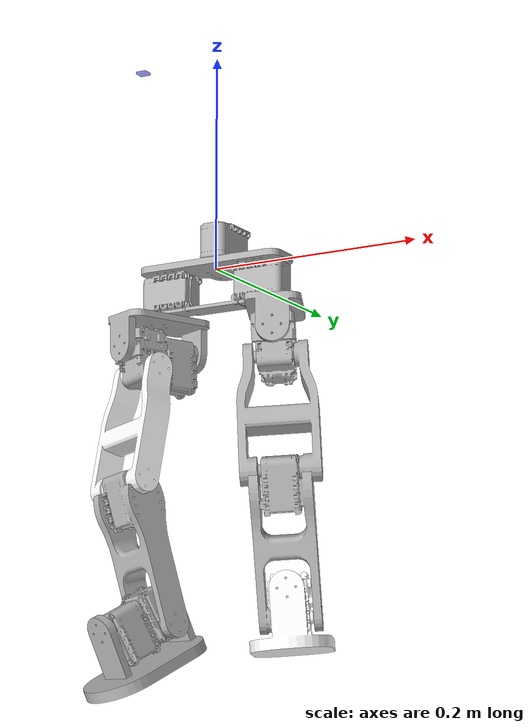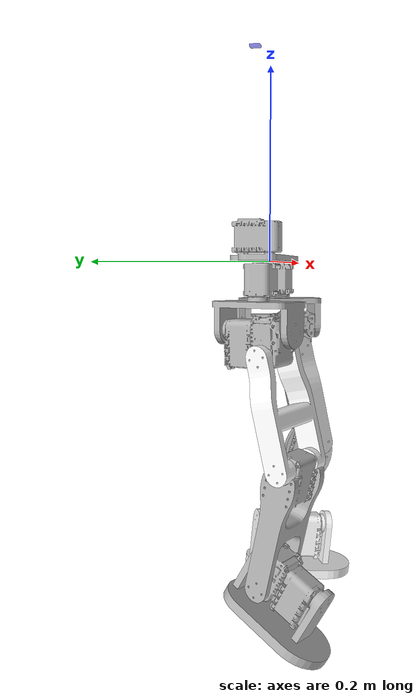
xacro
<?xml version="1.0" encoding="utf-8"?>

<robot name="humanoid" xmlns:xacro="http://www.ros.org/wiki/xacro">
    <xacro:include filename="$(find rocnikovy_projekt)/urdf/pelvis.xacro" />
    <xacro:include filename="$(find rocnikovy_projekt)/urdf/humanoid.gazebo" />
    <xacro:include filename="$(find rocnikovy_projekt)/urdf/sensors/imu_hector.xacro" />
    <xacro:include filename="$(find rocnikovy_projekt)/urdf/left_leg.xacro" />
    <xacro:include filename="$(find rocnikovy_projekt)/urdf/right_leg.xacro" />
</robot>

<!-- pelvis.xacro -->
<robot name="pelvis" xmlns:xacro="http://www.ros.org/wiki/xacro">
    <link
            name="base_link">
        <inertial>
            <origin
                    xyz="8.2334E-06 -0.0035862 -0.0041456"
                    rpy="0 0 0" />
            <mass
                    value="0.1973" />
            <inertia
                    ixx="3.8375E-05"
                    ixy="-1.8663E-09"
                    ixz="3.853E-08"
                    iyy="0.00010445"
                    iyz="2.3787E-07"
                    izz="9.554E-05" />
        </inertial>
        <visual>
            <origin
                    xyz="0 0 0"
                    rpy="0 0 0" />
            <geometry>
                <mesh
                        filename="package://rocnikovy_projekt/meshes/pelvis_link.STL" />
            </geometry>
            <material
                    name="">
                <color
                        rgba="0.69804 0.69804 0.69804 1" />
            </material>
        </visual>
        <collision>
            <origin
                    xyz="0 0 0"
                    rpy="0 0 0" />
            <geometry>
                <mesh
                        filename="package://rocnikovy_projekt/meshes/pelvis_link.STL" />
            </geometry>
        </collision>
    </link>
    <link
            name="left_hip_link">
        <inertial>
            <origin
                    xyz="4.1959E-14 -0.0015544 0.02042"
                    rpy="0 0 0" />
            <mass
                    value="0.0628" />
            <inertia
                    ixx="6.3024E-05"
                    ixy="-1.2716E-15"
                    ixz="-1.9084E-15"
                    iyy="1.705E-05"
                    iyz="-7.4568E-08"
                    izz="6.3748E-05" />
        </inertial>
        <visual>
            <origin
                    xyz="0 0 0"
                    rpy="0 0 0" />
            <geometry>
                <mesh
                        filename="package://rocnikovy_projekt/meshes/left_hip_link.STL" />
            </geometry>
            <material
                    name="">
                <color
                        rgba="0.69804 0.69804 0.69804 1" />
            </material>
        </visual>
        <collision>
            <origin
                    xyz="0 0 0"
                    rpy="0 0 0" />
            <geometry>
                <mesh
                        filename="package://rocnikovy_projekt/meshes/left_hip_link.STL" />
            </geometry>
        </collision>
    </link>
    <joint
            name="left_hip_joint"
            type="revolute">
        <origin
                xyz="0.0605 0 -0.03048"
                rpy="3.1416 0 0.44455" />
        <parent
                link="base_link" />
        <child
                link="left_hip_link" />
        <axis
                xyz="0 0 1" />
        <limit
                lower="-1"
                upper="1"
                effort="2"
                velocity="0.5" />
    </joint>

    <transmission name="trans_left_hip">
        <type>transmission_interface/SimpleTransmission</type>
        <joint name="left_hip_joint">
            <hardwareInterface>EffortJointInterface</hardwareInterface>
        </joint>
        <actuator name="motor_left_hip">
            <hardwareInterface>EffortJointInterface</hardwareInterface>
            <mechanicalReduction>1</mechanicalReduction>
        </actuator>
    </transmission>

    <link
            name="left_hip_servo_link">
        <inertial>
            <origin
                    xyz="-0.00022073 -0.010829 -0.0019615"
                    rpy="0 0 0" />
            <mass
                    value="0.1072" />
            <inertia
                    ixx="2.6938E-05"
                    ixy="2.2503E-07"
                    ixz="3.7327E-09"
                    iyy="1.623E-05"
                    iyz="2.2528E-07"
                    izz="2.751E-05" />
        </inertial>
        <visual>
            <origin
                    xyz="0 0 0"
                    rpy="0 0 0" />
            <geometry>
                <mesh
                        filename="package://rocnikovy_projekt/meshes/left_hip_servo_link.STL" />
            </geometry>
            <material
                    name="">
                <color
                        rgba="0.69804 0.69804 0.69804 1" />
            </material>
        </visual>
        <collision>
            <origin
                    xyz="0 0 0"
                    rpy="0 0 0" />
            <geometry>
                <mesh
                        filename="package://rocnikovy_projekt/meshes/left_hip_servo_link.STL" />
            </geometry>
        </collision>
    </link>
    <joint
            name="left_hip_servo_joint"
            type="revolute">
        <origin
                xyz="0 0 0.03902"
                rpy="-1.5708 -0.053854 -3.1416" />
        <parent
                link="left_hip_link" />
        <child
                link="left_hip_servo_link" />
        <axis
                xyz="0 0 1" />
        <limit
                lower="-1"
                upper="1"
                effort="2"
                velocity="0.5" />
    </joint>

    <transmission name="trans_left_hip_servo">
        <type>transmission_interface/SimpleTransmission</type>
        <joint name="left_hip_servo_joint">
            <hardwareInterface>EffortJointInterface</hardwareInterface>
        </joint>
        <actuator name="motor_left_hip_servo">
            <hardwareInterface>EffortJointInterface</hardwareInterface>
            <mechanicalReduction>1</mechanicalReduction>
        </actuator>
    </transmission>

    <link
            name="right_hip_link">
        <inertial>
            <origin
                    xyz="4.05750502641133E-11 0.00155391487199414 0.0204201314876415"
                    rpy="0 0 0" />
            <mass
                    value="0.0628" />
            <inertia
                    ixx="6.30242552027685E-05"
                    ixy="-2.22070142968391E-15"
                    ixz="-2.19765597267739E-15"
                    iyy="1.7050000604469E-05"
                    iyz="7.4543752491888E-08"
                    izz="6.37480504244599E-05" />
        </inertial>
        <visual>
            <origin
                    xyz="0 0 0"
                    rpy="0 0 0" />
            <geometry>
                <mesh
                        filename="package://rocnikovy_projekt/meshes/right_hip_link.STL" />
            </geometry>
            <material
                    name="">
                <color
                        rgba="0.698039215686274 0.698039215686274 0.698039215686274 1" />
            </material>
        </visual>
        <collision>
            <origin
                    xyz="0 0 0"
                    rpy="0 0 0" />
            <geometry>
                <mesh
                        filename="package://rocnikovy_projekt/meshes/right_hip_link.STL" />
            </geometry>
        </collision>
    </link>
    <joint
            name="right_hip_joint"
            type="revolute">
        <origin
                xyz="-0.0605 0 -0.03048"
                rpy="-3.1416 0 2.7299" />
        <parent
                link="base_link" />
        <child
                link="right_hip_link" />
        <axis
                xyz="0 0 1" />
        <limit
                lower="-1"
                upper="1"
                effort="2"
                velocity="0.5" />
    </joint>

    <transmission name="trans_right_hip">
        <type>transmission_interface/SimpleTransmission</type>
        <joint name="right_hip_joint">
            <hardwareInterface>EffortJointInterface</hardwareInterface>
        </joint>
        <actuator name="motor_right_hip">
            <hardwareInterface>EffortJointInterface</hardwareInterface>
            <mechanicalReduction>1</mechanicalReduction>
        </actuator>
    </transmission>

    <link
            name="right_hip_servo_link">
        <inertial>
            <origin
                    xyz="0.00019044 -0.010829 -0.0019918"
                    rpy="0 0 0" />
            <mass
                    value="0.1072" />
            <inertia
                    ixx="2.6938E-05"
                    ixy="-2.5072E-07"
                    ixz="3.7327E-09"
                    iyy="1.623E-05"
                    iyz="2.5096E-07"
                    izz="2.751E-05" />
        </inertial>
        <visual>
            <origin
                    xyz="0 0 0"
                    rpy="0 0 0" />
            <geometry>
                <mesh
                        filename="package://rocnikovy_projekt/meshes/right_hip_servo_link.STL" />
            </geometry>
            <material
                    name="">
                <color
                        rgba="0.69804 0.69804 0.69804 1" />
            </material>
        </visual>
        <collision>
            <origin
                    xyz="0 0 0"
                    rpy="0 0 0" />
            <geometry>
                <mesh
                        filename="package://rocnikovy_projekt/meshes/right_hip_servo_link.STL" />
            </geometry>
        </collision>
    </link>
    <joint
            name="right_hip_servo_joint"
            type="revolute">
        <origin
                xyz="0 0 0.03902"
                rpy="-1.5708 -0.056122 0" />
        <parent
                link="right_hip_link" />
        <child
                link="right_hip_servo_link" />
        <axis
                xyz="0 0 1" />
        <limit
                lower="0"
                upper="0"
                effort="2"
                velocity="0.5" />
    </joint>

    <transmission name="trans_right_hip_servo">
        <type>transmission_interface/SimpleTransmission</type>
        <joint name="right_hip_servo_joint">
            <hardwareInterface>EffortJointInterface</hardwareInterface>
        </joint>
        <actuator name="motor_right_hip_servo">
            <hardwareInterface>EffortJointInterface</hardwareInterface>
            <mechanicalReduction>1</mechanicalReduction>
        </actuator>
    </transmission>
</robot>

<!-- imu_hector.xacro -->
<robot name="imu_sensor" xmlns:xacro="http://www.ros.org/wiki/xacro">

	<xacro:include filename="$(find rocnikovy_projekt)/urdf/sensors/components/imu_sensor_hector.urdf.xacro" />

</robot>

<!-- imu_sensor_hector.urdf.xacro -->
<robot name="imu" xmlns:xacro="http://www.ros.org/wiki/xacro">
   <xacro:include	filename="$(find rocnikovy_projekt)/urdf/sensors/components/imu_sensor_hector.gazebo.xacro"/>
   <xacro:include	filename="$(find rocnikovy_projekt)/urdf/sensors/components/imu_sensor.config.xacro"/>

   <link name="imu_link">

     <visual>
        <origin xyz="${imu_link_x} ${imu_link_y} ${imu_link_z}" rpy="${imu_link_r} ${imu_link_p} ${imu_link_y}"/>
        <geometry>
          <box size="${imu_link_length} ${imu_link_width} ${imu_link_height}"/>
        </geometry>
        <material name="blue">
          <color rgba="0 0 0.8 0.5"/>
        </material>
     </visual>

      <collision>
          <origin xyz="${imu_link_x} ${imu_link_y} ${imu_link_z}" rpy="${imu_link_r} ${imu_link_p} ${imu_link_y}"/>
          <geometry>
            <box size="${imu_link_length} ${imu_link_width} ${imu_link_height}" />
          </geometry>
      </collision>

       <inertial>
           <origin xyz="0 0 0" rpy="0 0 0"/>
           <mass value="${imu_link_mass}"/>
           <xacro:box_inertia m="${imu_link_mass}" x="${imu_link_length}" y="${imu_link_width}" z="${imu_link_height}"  />
       </inertial>
   </link>

   <joint name="joint_imu" type="fixed">
      <axis xyz="0 0.0 0.0"/>
      <origin xyz="-0.08 0 0 " rpy="0 0 0 "/>
      <parent link="base_link" />
      <child link="imu_link" />

    </joint>

   <xacro:insert_gazebo_part_hector />

</robot>

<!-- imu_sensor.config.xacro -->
<robot name="imu" xmlns:xacro="http://www.ros.org/wiki/xacro" >

<!-- Configuration of a simple IMU model with additive white noise based on Gazebo IMU generic plugin.
David Cesenek, cesendav@fel.cvut.cz,
-->
    <xacro:property name="imu_link_mass" value="0.0002"/>
    <xacro:property name="imu_link_x" value="0.0"/>
    <xacro:property name="imu_link_y" value="0.0"/>
    <xacro:property name="imu_link_z" value="0.2"/>
    <xacro:property name="imu_link_r" value="0.0"/>
    <xacro:property name="imu_link_p" value="0.0"/>
    <xacro:property name="imu_link_y" value="0.0"/>
    <xacro:property name="imu_link_length" value="0.01"/>
    <xacro:property name="imu_link_width" value="0.01"/>
    <xacro:property name="imu_link_height" value="0.002"/>

    <xacro:property name="imu_updateRate" value="100"/> <!-- update rate of checking, if there is a new imu topic-->
    <xacro:property name="imu_updateRateHZ" value="100"/>  <!-- update rate of simulated sensor, in Hz-->

    <xacro:property name="imu_gaussian_noise" value="0.00215"/>
    <xacro:property name="imu_xyzOffset" value="0 0 0"/>
    <xacro:property name="imu_rpyOffset" value="0 0 0"/>

    <xacro:macro name="box_inertia" params="m x y z">
        <inertia ixx="${m * (y * y + z * z) / 12}" ixy="0" ixz="0"
                 iyy="${m * (x * x + z * z) / 12}" iyz="0"
                 izz="${m * (x * x + z * z) / 12}"
        />
    </xacro:macro>
</robot>

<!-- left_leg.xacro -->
<robot name="left_leg" xmlns:xacro="http://www.ros.org/wiki/xacro">
    <link
            name="left_thigh_link">
        <inertial>
            <origin
                    xyz="1.69171554542658E-09 -0.0607283296426261 0.00159765609901391"
                    rpy="0 0 0" />
            <mass
                    value="0.1249" />
            <inertia
                    ixx="0.00020875632994922"
                    ixy="1.2818107857486E-12"
                    ixz="-8.38700247083159E-13"
                    iyy="8.37276019948441E-05"
                    iyz="8.31465783649004E-09"
                    izz="0.000136918942523945" />
        </inertial>
        <visual>
            <origin
                    xyz="0 0 0"
                    rpy="0 0 0" />
            <geometry>
                <mesh
                        filename="package://rocnikovy_projekt/meshes/left_thigh_link.STL" />
            </geometry>
            <material
                    name="">
                <color
                        rgba="0.698039215686274 0.698039215686274 0.698039215686274 1" />
            </material>
        </visual>
        <collision>
            <origin
                    xyz="0 0 0"
                    rpy="0 0 0" />
            <geometry>
                <mesh
                        filename="package://rocnikovy_projekt/meshes/left_thigh_link.STL" />
            </geometry>
        </collision>
    </link>
    <joint
            name="left_thigh_joint"
            type="revolute">
        <origin
                xyz="0 -0.0225 -0.01715"
                rpy="1.5708 -1.3439 -1.5708" />
        <parent
                link="left_hip_servo_link" />
        <child
                link="left_thigh_link" />
        <axis
                xyz="0 0 1" />
        <limit
                lower="-3.14"
                upper="3.14"
                effort="2"
                velocity="0.5" />
    </joint>

    <transmission name="trans_left_thigh">
        <type>transmission_interface/SimpleTransmission</type>
        <joint name="left_thigh_joint">
            <hardwareInterface>EffortJointInterface</hardwareInterface>
        </joint>
        <actuator name="motor_left_thigh">
            <hardwareInterface>EffortJointInterface</hardwareInterface>
            <mechanicalReduction>1</mechanicalReduction>
        </actuator>
    </transmission>

    <link
            name="left_shin_link">
        <inertial>
            <origin
                    xyz="-1.0078E-05 -0.051004 -0.0001917"
                    rpy="0 0 0" />
            <mass
                    value="0.1613" />
            <inertia
                    ixx="0.00018043"
                    ixy="-1.2865E-08"
                    ixz="1.8773E-09"
                    iyy="6.2108E-05"
                    iyz="2.8146E-07"
                    izz="0.00013852" />
        </inertial>
        <visual>
            <origin
                    xyz="0 0 0"
                    rpy="0 0 0" />
            <geometry>
                <mesh
                        filename="package://rocnikovy_projekt/meshes/left_shin_link.STL" />
            </geometry>
            <material
                    name="">
                <color
                        rgba="0.69804 0.69804 0.69804 1" />
            </material>
        </visual>
        <collision>
            <origin
                    xyz="0 0 0"
                    rpy="0 0 0" />
            <geometry>
                <mesh
                        filename="package://rocnikovy_projekt/meshes/left_shin_link.STL" />
            </geometry>
        </collision>
    </link>
    <joint
            name="left_shin_joint"
            type="revolute">
        <origin
                xyz="0 -0.11 0"
                rpy="0 0 0.53665" />
        <parent
                link="left_thigh_link" />
        <child
                link="left_shin_link" />
        <axis
                xyz="0 0 1" />
        <limit
                lower="-3.14"
                upper="3.14"
                effort="2"
                velocity="0.5" />
    </joint>

    <transmission name="trans_left_shin">
        <type>transmission_interface/SimpleTransmission</type>
        <joint name="left_shin_joint">
            <hardwareInterface>EffortJointInterface</hardwareInterface>
        </joint>
        <actuator name="motor_left_shin">
            <hardwareInterface>EffortJointInterface</hardwareInterface>
            <mechanicalReduction>1</mechanicalReduction>
        </actuator>
    </transmission>

    <link
            name="left_ankle_link">
        <inertial>
            <origin
                    xyz="-0.0116740866089173 0.0149960300324561 -0.000529265273914892"
                    rpy="0 0 0" />
            <mass
                    value="0.1072" />
            <inertia
                    ixx="1.6230427070624E-05"
                    ixy="-2.24782250481838E-07"
                    ixz="2.25029030623655E-07"
                    iyy="2.75097004184363E-05"
                    iyz="-3.73269013550268E-09"
                    izz="2.69381077131879E-05" />
        </inertial>
        <visual>
            <origin
                    xyz="0 0 0"
                    rpy="0 0 0" />
            <geometry>
                <mesh
                        filename="package://rocnikovy_projekt/meshes/left_ankle_link.STL" />
            </geometry>
            <material
                    name="">
                <color
                        rgba="1 1 1 1" />
            </material>
        </visual>
        <collision>
            <origin
                    xyz="0 0 0"
                    rpy="0 0 0" />
            <geometry>
                <mesh
                        filename="package://rocnikovy_projekt/meshes/left_ankle_link.STL" />
            </geometry>
        </collision>
    </link>
    <joint
            name="left_ankle_joint"
            type="revolute">
        <origin
                xyz="0 -0.13 0"
                rpy="3.1416 0 -1.8026" />
        <parent
                link="left_shin_link" />
        <child
                link="left_ankle_link" />
        <axis
                xyz="0 0 1" />
        <limit
                lower="-3.14"
                upper="3.14"
                effort="2"
                velocity="0.5" />
    </joint>

    <transmission name="trans_left_ankle">
        <type>transmission_interface/SimpleTransmission</type>
        <joint name="left_ankle_joint">
            <hardwareInterface>EffortJointInterface</hardwareInterface>
        </joint>
        <actuator name="motor_left_ankle">
            <hardwareInterface>EffortJointInterface</hardwareInterface>
            <mechanicalReduction>1</mechanicalReduction>
        </actuator>
    </transmission>

    <link
            name="left_foot_link">
        <inertial>
            <origin
                    xyz="9.91363935387568E-12 -0.039654197781679 -0.0253797103440415"
                    rpy="0 0 0" />
            <mass
                    value="0.1435" />
            <inertia
                    ixx="0.000200660993762869"
                    ixy="2.59319983834851E-16"
                    ixz="2.26686514882574E-15"
                    iyy="0.000207009674728983"
                    iyz="-8.71443997911782E-06"
                    izz="7.7405804632103E-05" />
        </inertial>
        <visual>
            <origin
                    xyz="0 0 0"
                    rpy="0 0 0" />
            <geometry>
                <mesh
                        filename="package://rocnikovy_projekt/meshes/left_foot_link.STL" />
            </geometry>
            <material
                    name="">
                <color
                        rgba="1 1 1 1" />
            </material>
        </visual>
        <collision>
            <origin
                    xyz="0 0 0"
                    rpy="0 0 0" />
            <geometry>
                <mesh
                        filename="package://rocnikovy_projekt/meshes/left_foot_link.STL" />
            </geometry>
        </collision>
    </link>
    <joint
            name="left_foot_joint"
            type="revolute">
        <origin
                xyz="-0.0225 0 -0.00075"
                rpy="1.5708 -1.5582 0" />
        <parent
                link="left_ankle_link" />
        <child
                link="left_foot_link" />
        <axis
                xyz="0 0 1" />
        <limit
                lower="-3.14"
                upper="3.14"
                effort="2"
                velocity="0.5" />
    </joint>

    <transmission name="trans_left_foot">
        <type>transmission_interface/SimpleTransmission</type>
        <joint name="left_foot_joint">
            <hardwareInterface>EffortJointInterface</hardwareInterface>
        </joint>
        <actuator name="motor_left_foot">
            <hardwareInterface>EffortJointInterface</hardwareInterface>
            <mechanicalReduction>1</mechanicalReduction>
        </actuator>
    </transmission>
</robot>

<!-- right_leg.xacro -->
<robot name="right_leg" xmlns:xacro="http://www.ros.org/wiki/xacro">
    <link
            name="right_thigh_link">
        <inertial>
            <origin
                    xyz="-4.22307918496179E-09 -0.00159765643418633 0.0607283297292491"
                    rpy="0 0 0" />
            <mass
                    value="0.1249" />
            <inertia
                    ixx="0.000208756330206137"
                    ixy="-7.42020570557384E-13"
                    ixz="-6.69751965814828E-12"
                    iyy="0.000136918941675367"
                    iyz="8.31412657783337E-09"
                    izz="8.37276009330216E-05" />
        </inertial>
        <visual>
            <origin
                    xyz="0 0 0"
                    rpy="0 0 0" />
            <geometry>
                <mesh
                        filename="package://rocnikovy_projekt/meshes/right_thigh_link.STL" />
            </geometry>
            <material
                    name="">
                <color
                        rgba="1 1 1 1" />
            </material>
        </visual>
        <collision>
            <origin
                    xyz="0 0 0"
                    rpy="0 0 0" />
            <geometry>
                <mesh
                        filename="package://rocnikovy_projekt/meshes/right_thigh_link.STL" />
            </geometry>
        </collision>
    </link>
    <joint
            name="right_thigh_joint"
            type="revolute">
        <origin
                xyz="0 -0.0225 -0.01715"
                rpy="-3.1416 -1.3553 -1.5708" />
        <parent
                link="right_hip_servo_link" />
        <child
                link="right_thigh_link" />
        <axis
                xyz="0 1 0" />
        <limit
                lower="-3.14"
                upper="3.14"
                effort="2"
                velocity="0.5" />
    </joint>

    <transmission name="trans_right_thigh">
        <type>transmission_interface/SimpleTransmission</type>
        <joint name="right_thigh_joint">
            <hardwareInterface>EffortJointInterface</hardwareInterface>
        </joint>
        <actuator name="motor_right_thigh">
            <hardwareInterface>EffortJointInterface</hardwareInterface>
            <mechanicalReduction>1</mechanicalReduction>
        </actuator>
    </transmission>

    <link
            name="right_shin_link">
        <inertial>
            <origin
                    xyz="-1.0173E-05 -0.051004 -0.00019169"
                    rpy="0 0 0" />
            <mass
                    value="0.1613" />
            <inertia
                    ixx="0.00018043"
                    ixy="-1.286E-08"
                    ixz="1.8735E-09"
                    iyy="6.2107E-05"
                    iyz="2.8147E-07"
                    izz="0.00013852" />
        </inertial>
        <visual>
            <origin
                    xyz="0 0 0"
                    rpy="0 0 0" />
            <geometry>
                <mesh
                        filename="package://rocnikovy_projekt/meshes/right_shin_link.STL" />
            </geometry>
            <material
                    name="">
                <color
                        rgba="0.69804 0.69804 0.69804 1" />
            </material>
        </visual>
        <collision>
            <origin
                    xyz="0 0 0"
                    rpy="0 0 0" />
            <geometry>
                <mesh
                        filename="package://rocnikovy_projekt/meshes/right_shin_link.STL" />
            </geometry>
        </collision>
    </link>
    <joint
            name="right_shin_joint"
            type="revolute">
        <origin
                xyz="0 0 0.11"
                rpy="-1.5708 -0.48165 3.1416" />
        <parent
                link="right_thigh_link" />
        <child
                link="right_shin_link" />
        <axis
                xyz="0 0 1" />
        <limit
                lower="-3.14"
                upper="3.14"
                effort="2"
                velocity="0.5" />
    </joint>

    <transmission name="trans_right_shin">
        <type>transmission_interface/SimpleTransmission</type>
        <joint name="right_shin_joint">
            <hardwareInterface>EffortJointInterface</hardwareInterface>
        </joint>
        <actuator name="motor_right_shin">
            <hardwareInterface>EffortJointInterface</hardwareInterface>
            <mechanicalReduction>1</mechanicalReduction>
        </actuator>
    </transmission>

    <link
            name="right_ankle_link">
        <inertial>
            <origin
                    xyz="-0.00055956 0.011326 0.0149657"
                    rpy="0 0 0" />
            <mass
                    value="0.1072" />
            <inertia
                    ixx="2.6938E-05"
                    ixy="-2.5072E-07"
                    ixz="3.7326E-09"
                    iyy="1.623E-05"
                    iyz="2.5047E-07"
                    izz="2.751E-05" />
        </inertial>
        <visual>
            <origin
                    xyz="0 0.034 0.0135"
                    rpy="0 0 0" />
            <geometry>
                <mesh
                        filename="package://rocnikovy_projekt/meshes/right_ankle_link.STL" />
            </geometry>
            <material
                    name="">
                <color
                        rgba="0.69804 0.69804 0.69804 1" />
            </material>
        </visual>
        <collision>
            <origin
                    xyz="0 0.034 0.0135"
                    rpy="0 0 0" />
            <geometry>
                <mesh
                        filename="package://rocnikovy_projekt/meshes/right_ankle_link.STL" />
            </geometry>
        </collision>
    </link>
    <joint
            name="right_ankle_joint"
            type="revolute">
        <origin
                xyz="-0.0001 -0.1301 0"
                rpy="0.24476 1.5708 0" />
        <parent
                link="right_shin_link" />
        <child
                link="right_ankle_link" />
        <axis
                xyz="1 0 0" />
        <limit
                lower="-3.14"
                upper="3.14"
                effort="2"
                velocity="0.5" />
    </joint>

    <transmission name="trans_right_ankle">
        <type>transmission_interface/SimpleTransmission</type>
        <joint name="right_ankle_joint">
            <hardwareInterface>EffortJointInterface</hardwareInterface>
        </joint>
        <actuator name="motor_right_ankle">
            <hardwareInterface>EffortJointInterface</hardwareInterface>
            <mechanicalReduction>1</mechanicalReduction>
        </actuator>
    </transmission>

            <link
                    name="right_foot_link">
                <inertial>
                    <origin
                            xyz="7.42829062150285E-12 0.0396541978101517 -0.02462029"
                            rpy="3.1416 0 3.1416" />
                    <mass
                            value="0.1435" />
                    <inertia
                            ixx="0.000200660993762453"
                            ixy="4.32796990113742E-16"
                            ixz="-1.40879366820282E-15"
                            iyy="0.000207009674728351"
                            iyz="-8.71443997886699E-06"
                            izz="7.7405804632656E-05" />
                </inertial>
                <visual>
                    <origin
                            xyz="0 0 -0.0135"
                            rpy="0 3.1416 0" />
                    <geometry>
                        <mesh
                                filename="package://rocnikovy_projekt/meshes/right_foot_link.STL" />
                    </geometry>
                    <material
                            name="">
                        <color
                                rgba="0.698039215686274 0.698039215686274 0.698039215686274 1" />
                    </material>
                </visual>
                <collision>
                    <origin
                            xyz="0 0 -0.0135"
                            rpy="0 3.1416 0" />
                    <geometry>
                        <mesh
                                filename="package://rocnikovy_projekt/meshes/right_foot_link.STL" />
                    </geometry>
                </collision>
            </link>
            <joint
                    name="right_foot_joint"
                    type="revolute">
                <origin
                        xyz="-0.00075 0.0225 0"
                        rpy="0 3.1416 2.9964" />
                <parent
                        link="right_ankle_link" />
                <child
                        link="right_foot_link" />
                <axis
                        xyz="0 0 1" />
                <limit
                        lower="-3.14"
                        upper="3.14"
                        effort="2"
                        velocity="0.5" />
            </joint>

            <transmission name="trans_right_foot">
                <type>transmission_interface/SimpleTransmission</type>
                <joint name="right_foot_joint">
                    <hardwareInterface>EffortJointInterface</hardwareInterface>
                </joint>
                <actuator name="motor_right_foot">
                    <hardwareInterface>EffortJointInterface</hardwareInterface>
                    <mechanicalReduction>1</mechanicalReduction>
                </actuator>
            </transmission>

</robot>
